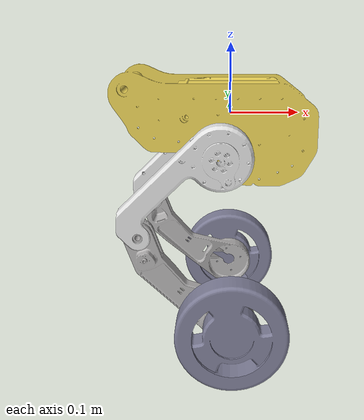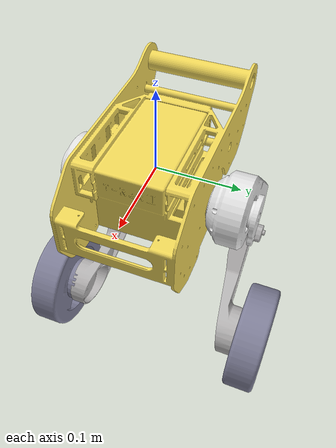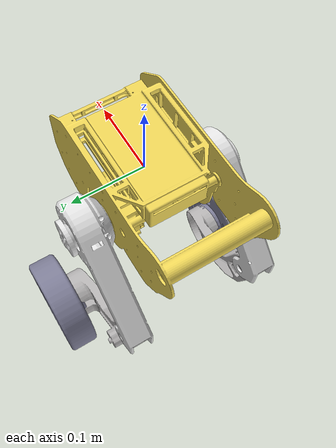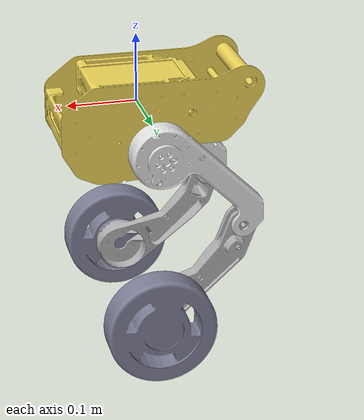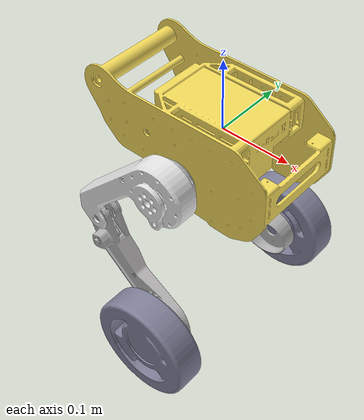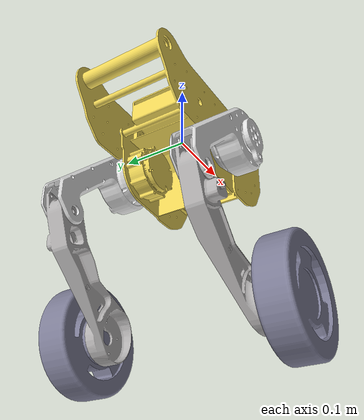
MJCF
<mujoco model="wfs">
  <compiler angle="radian"/>
  <asset>
    <mesh name="base_link" file="/home/robotlab/research/reinforcement_learning/isaacgym/legged_gym_LSTM/legged_gym/resources/robots/wfs/meshes/base_link.STL"/>
    <mesh name="la" file="/home/robotlab/research/reinforcement_learning/isaacgym/legged_gym_LSTM/legged_gym/resources/robots/wfs/meshes/la.STL"/>
    <mesh name="ll" file="/home/robotlab/research/reinforcement_learning/isaacgym/legged_gym_LSTM/legged_gym/resources/robots/wfs/meshes/ll.STL"/>
    <mesh name="lw" file="/home/robotlab/research/reinforcement_learning/isaacgym/legged_gym_LSTM/legged_gym/resources/robots/wfs/meshes/lw.STL"/>
    <mesh name="ra" file="/home/robotlab/research/reinforcement_learning/isaacgym/legged_gym_LSTM/legged_gym/resources/robots/wfs/meshes/ra.STL"/>
    <mesh name="rl" file="/home/robotlab/research/reinforcement_learning/isaacgym/legged_gym_LSTM/legged_gym/resources/robots/wfs/meshes/rl.STL"/>
    <mesh name="rw" file="/home/robotlab/research/reinforcement_learning/isaacgym/legged_gym_LSTM/legged_gym/resources/robots/wfs/meshes/rw.STL"/>
  </asset>
  <worldbody>
    <geom type="mesh" rgba="0.949 0.85 0.349 1" mesh="base_link"/>
    <body name="la" pos="-0.014207 0.1052 -0.0465">
      <inertial pos="-0.033704 -0.010899 -0.020545" quat="0.633304 0.33959 0.323717 0.615477" mass="0.7" diaginertia="0.000520051 0.000462179 6.79406e-05"/>
      <joint name="laj" pos="0 0 0" axis="0 -1 0" range="-2 2" actuatorfrcrange="-12 12"/>
      <geom type="mesh" rgba="0.902 0.902 0.902 1" mesh="la"/>
      <body name="ll" pos="-0.11545 -0.0075 -0.11166">
        <inertial pos="0.054145 0.0083245 -0.063627" quat="0.269031 0.608011 0.67566 0.318479" mass="0.28" diaginertia="0.000577889 0.000550901 4.20401e-05"/>
        <joint name="llj" pos="0 0 0" axis="0 1 0" range="-1 0.68" actuatorfrcrange="-12 12"/>
        <geom type="mesh" rgba="0.7137 0.7059 0.7059 1" mesh="ll"/>
        <body name="lw" pos="0.13092 0.027 -0.12321">
          <inertial pos="-1.4311e-05 0.027855 -1.1802e-05" quat="0.669586 -0.22712 -0.227073 0.669708" mass="0.832" diaginertia="0.0022205 0.00121924 0.00121886"/>
          <joint name="lwj" pos="0 0 0" axis="0 -1 0" actuatorfrcrange="-2.5 2.5"/>
          <geom type="mesh" rgba="0.5 0.5 0.6 1" mesh="lw"/>
        </body>
      </body>
    </body>
    <body name="ra" pos="-0.014207 -0.1052 -0.0465">
      <inertial pos="-0.033704 0.010899 -0.020545" quat="0.615476 0.323721 0.339594 0.633301" mass="0.7" diaginertia="0.000520061 0.000462186 6.79438e-05"/>
      <joint name="raj" pos="0 0 0" axis="0 1 0" range="-2 2" actuatorfrcrange="-12 12"/>
      <geom type="mesh" rgba="0.902 0.902 0.902 1" mesh="ra"/>
      <body name="rl" pos="-0.11545 0.0075 -0.11166">
        <inertial pos="0.054146 -0.0083247 -0.063628" quat="0.318482 0.675652 0.60802 0.269026" mass="0.28" diaginertia="0.000577909 0.000550911 4.20499e-05"/>
        <joint name="rlj" pos="0 0 0" axis="0 -1 0" range="-0.68 1" actuatorfrcrange="-12 12"/>
        <geom type="mesh" rgba="0.7137 0.7059 0.7059 1" mesh="rl"/>
        <body name="rw" pos="0.13092 -0.027 -0.12321">
          <inertial pos="-1.4311e-05 -0.027855 -1.1802e-05" quat="0.669708 -0.227073 -0.22712 0.669586" mass="0.832" diaginertia="0.0022205 0.00121924 0.00121886"/>
          <joint name="rwj" pos="0 0 0" axis="0 1 0" actuatorfrcrange="-2.5 2.5"/>
          <geom type="mesh" rgba="0.5 0.5 0.6 1" mesh="rw"/>
        </body>
      </body>
    </body>
  </worldbody>
  <actuator>
    <motor name="laj" joint="laj" forcelimited="false" forcerange="-120 120"/>
    <motor name="llj" joint="llj" forcelimited="true" forcerange="-120 120"/>
    <motor name="lmotor" joint="lwj" forcelimited="true" forcerange="-2 2"/>

    <motor name="raj" joint="raj" forcelimited="true" ctrlrange="-12 12" forcerange="-12 12" />
    <motor name="rlj" joint="rlj" forcelimited="true" forcerange="-12 12"/>
    <motor name="rmotor" joint="rwj" forcelimited="true" forcerange="-2 2"/>
    </actuator>

</mujoco>
